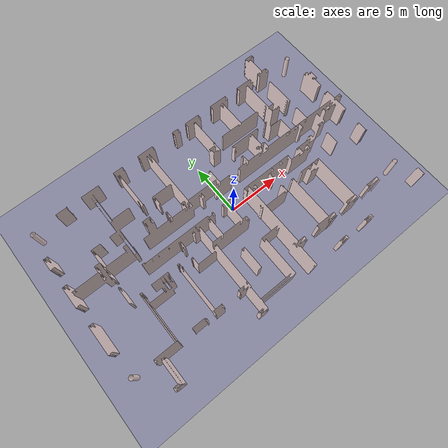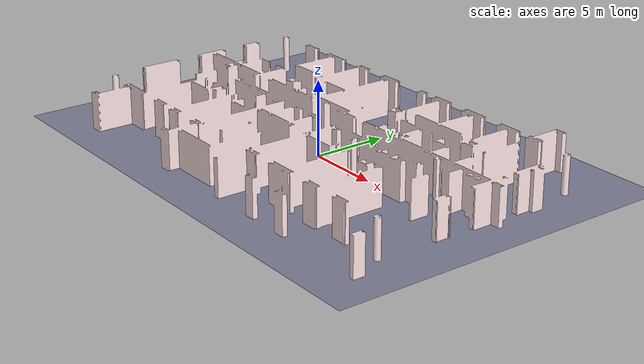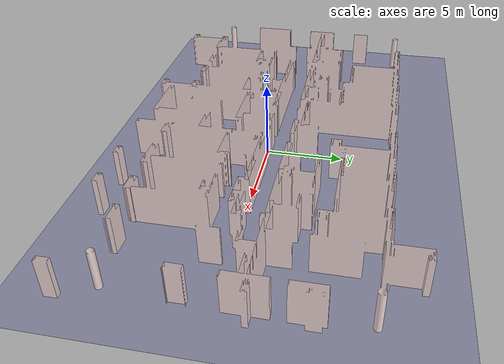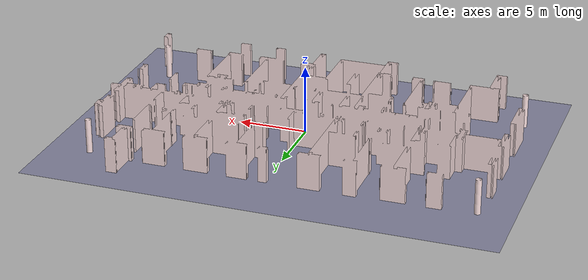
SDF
<sdf version='1.9'>
  <world name='boro'>
    <physics type="ode">
      <max_step_size>0.004</max_step_size>
      <real_time_factor>1.0</real_time_factor>
      <real_time_update_rate>250</real_time_update_rate>
    </physics>
    <plugin name='ignition::gazebo::systems::Physics' filename='ignition-gazebo-physics-system' />
    <plugin name='ignition::gazebo::systems::UserCommands'
      filename='ignition-gazebo-user-commands-system' />
    <plugin name='ignition::gazebo::systems::SceneBroadcaster'
      filename='ignition-gazebo-scene-broadcaster-system' />
    <plugin name='ignition::gazebo::systems::Contact' filename='ignition-gazebo-contact-system' />
    <plugin name='ignition::gazebo::systems::Imu' filename='ignition-gazebo-imu-system' />
    <plugin name='ignition::gazebo::systems::Sensors' filename='ignition-gazebo-sensors-system'>
      <render_engine>ogre2</render_engine>
    </plugin>
    <gui fullscreen='false'>
      <plugin name='3D View' filename='GzScene3D'>
        <ignition-gui>
          <title>3D View</title>
          <property type='bool' key='showTitleBar'>0</property>
          <property type='string' key='state'>docked</property>
        </ignition-gui>
        <engine>ogre2</engine>
        <scene>scene</scene>
        <ambient_light>0.5984631152222222 0.5984631152222222 0.5984631152222222</ambient_light>
        <background_color>0.8984631152222222 0.8984631152222222 0.8984631152222222</background_color>
        <camera_pose>-6 0 6 0 0.5 0</camera_pose>
      </plugin>
      <plugin name='World control' filename='WorldControl'>
        <ignition-gui>
          <title>World control</title>
          <property type='bool' key='showTitleBar'>0</property>
          <property type='bool' key='resizable'>0</property>
          <property type='double' key='height'>72</property>
          <property type='double' key='width'>121</property>
          <property type='double' key='z'>1</property>
          <property type='string' key='state'>floating</property>
          <anchors target='3D View'>
            <line own='left' target='left' />
            <line own='bottom' target='bottom' />
          </anchors>
        </ignition-gui>
        <play_pause>1</play_pause>
        <step>1</step>
        <start_paused>1</start_paused>
      </plugin>
      <plugin name='World stats' filename='WorldStats'>
        <ignition-gui>
          <title>World stats</title>
          <property type='bool' key='showTitleBar'>0</property>
          <property type='bool' key='resizable'>0</property>
          <property type='double' key='height'>110</property>
          <property type='double' key='width'>290</property>
          <property type='double' key='z'>1</property>
          <property type='string' key='state'>floating</property>
          <anchors target='3D View'>
            <line own='right' target='right' />
            <line own='bottom' target='bottom' />
          </anchors>
        </ignition-gui>
        <sim_time>1</sim_time>
        <real_time>1</real_time>
        <real_time_factor>1</real_time_factor>
        <iterations>1</iterations>
      </plugin>
      <plugin name='Entity tree' filename='EntityTree' />
    </gui>
    <gravity>0 0 -9.8</gravity>
    <magnetic_field>6e-06 2.3e-05 -4.2e-05</magnetic_field>
    <atmosphere type='adiabatic' />
    <scene>
      <grid>false</grid>
      <ambient>0.4 0.4 0.4 1</ambient>
      <background>0.7 0.7 0.7 1</background>
      <shadows>true</shadows>
    </scene>

    <model name='Boro'>
      <!-- Original model is rotated, so derotate it by setting the correct yaw -->
      <pose>0 0 0 0 0 -0.9578234142540422</pose>
      <static>true</static>
      <link name='main'>
        <collision name="plane_collision">
          <geometry>
            <plane>
              <normal>0 0 1</normal>
              <size>100 100</size>
            </plane>
          </geometry>
        </collision>
        <visual name="plane_visual">
          <geometry>
            <plane>
              <normal>0 0 1</normal>
              <size>100 100</size>
            </plane>
          </geometry>
          <material>
            <diffuse>0.5 0.5 0.6 1</diffuse>
            <specular>0.5 0.5 0.6 1</specular>
          </material>
        </visual>
        <visual name='Boro_visual'>
          <geometry>
            <mesh>
              <uri>boro.obj</uri>
            </mesh>
          </geometry>
          <material>
            <diffuse>1 0.9 0.9 1</diffuse>
            <specular>1 0.9 0.9 1</specular>
          </material>
        </visual>
      </link>
    </model>

    <light type="directional" name="sun">
      <direction>0.5 0.5 -1</direction>
      <diffuse>1 1 1 1</diffuse>
      <specular>.1 .1 .1 1</specular>
      <attenuation>
        <range>1000</range>
        <linear>0.2</linear>
        <constant>0.8</constant>
        <quadratic>0.01</quadratic>
      </attenuation>
      <cast_shadows>true</cast_shadows>
    </light>

  </world>
</sdf>
